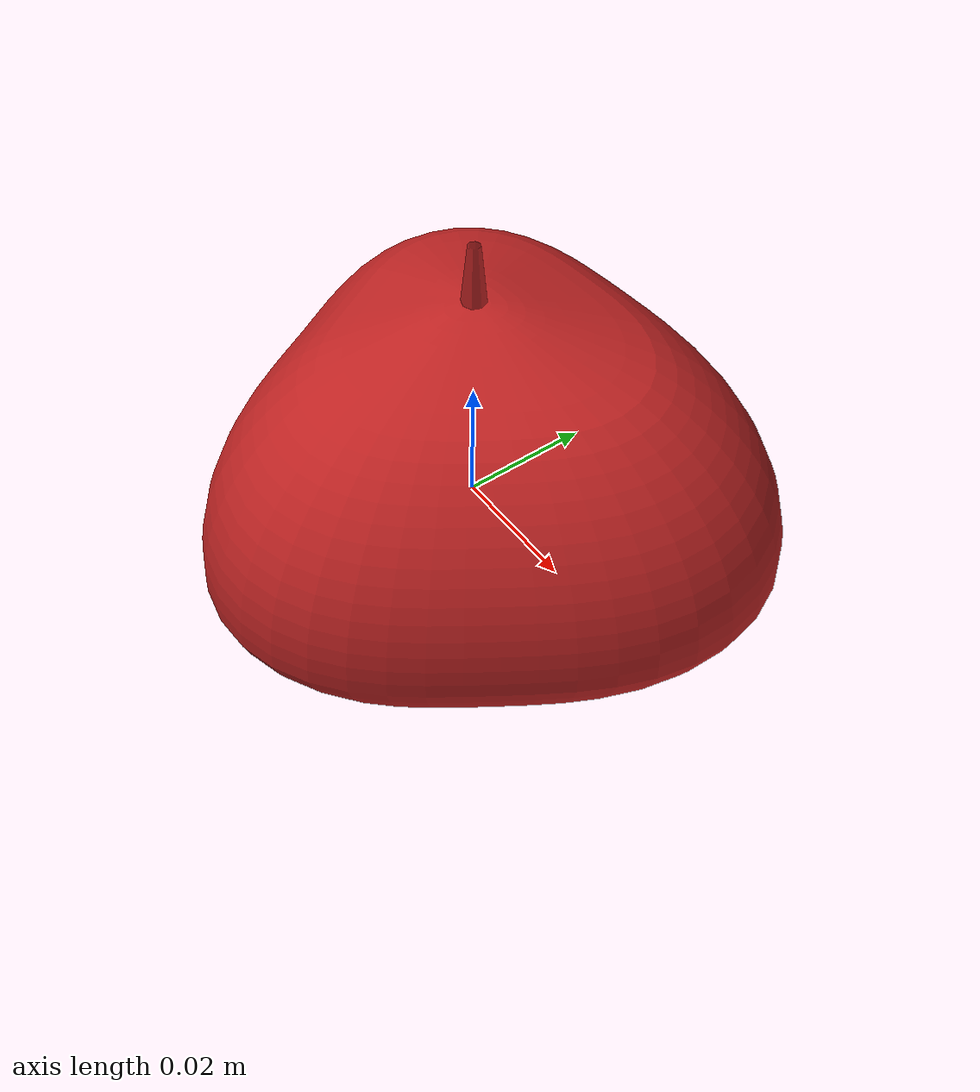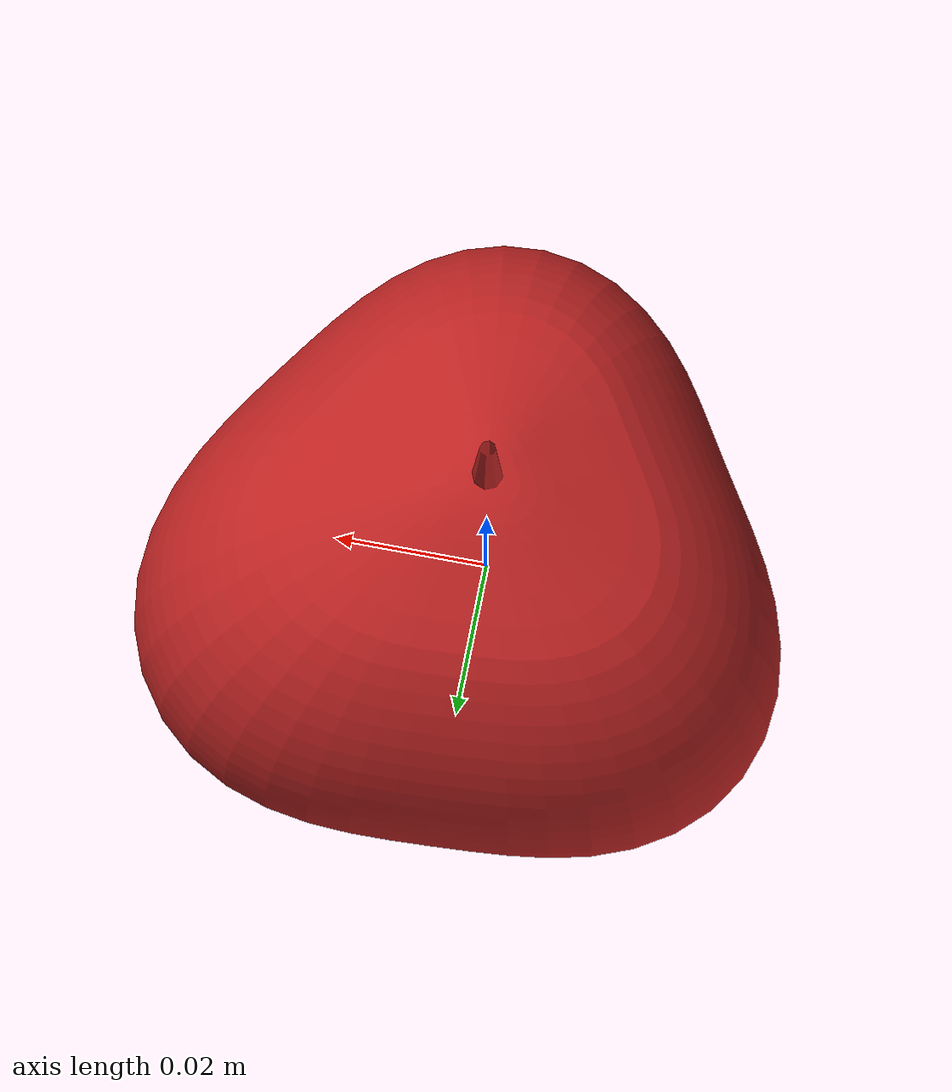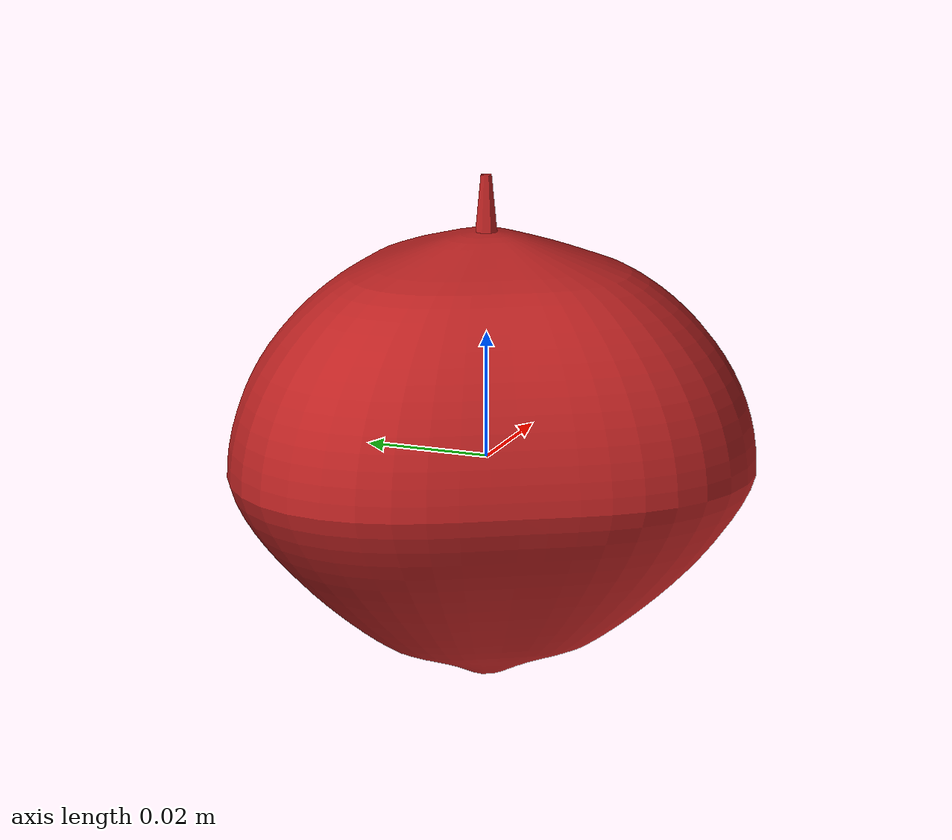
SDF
<?xml version="1.0" ?>
<sdf version="1.7">
  <model name="apple_05">
    <pose>0 0 0 0 0 0</pose>
    <link name="link">
      <inertial>
        <mass>0.17</mass>
        <inertia>
          <ixx>0.00010880</ixx>
          <iyy>0.00010880</iyy>
          <izz>0.00010880</izz>
          <ixy>0</ixy>
          <ixz>0</ixz>
          <iyz>0</iyz>
        </inertia>
      </inertial>

      <collision name="collision">
        <geometry>
          <sphere>
            <radius>0.04000</radius>
          </sphere>
        </geometry>
        <surface>
          <friction>
            <ode>
              <mu>0.7</mu>
              <mu2>0.7</mu2>
            </ode>
          </friction>
          <contact>
            <ode>
              <kp>100000.0</kp>
              <kd>1.0</kd>
              <min_depth>0.001</min_depth>
            </ode>
          </contact>
        </surface>
      </collision>

      <visual name="visual">
        <geometry>
          <mesh>
            <uri>model://apple_05/meshes/apple_05_v4.obj</uri>
            <scale>0.04000 0.04000 0.04000</scale>
          </mesh>
        </geometry>
        <material>
          <ambient>0.745 0.137 0.137 1</ambient>
          <diffuse>0.745 0.137 0.137 1</diffuse>
          <specular>0.30 0.30 0.30 1</specular>
        </material>
      </visual>
    </link>
  </model>
</sdf>
